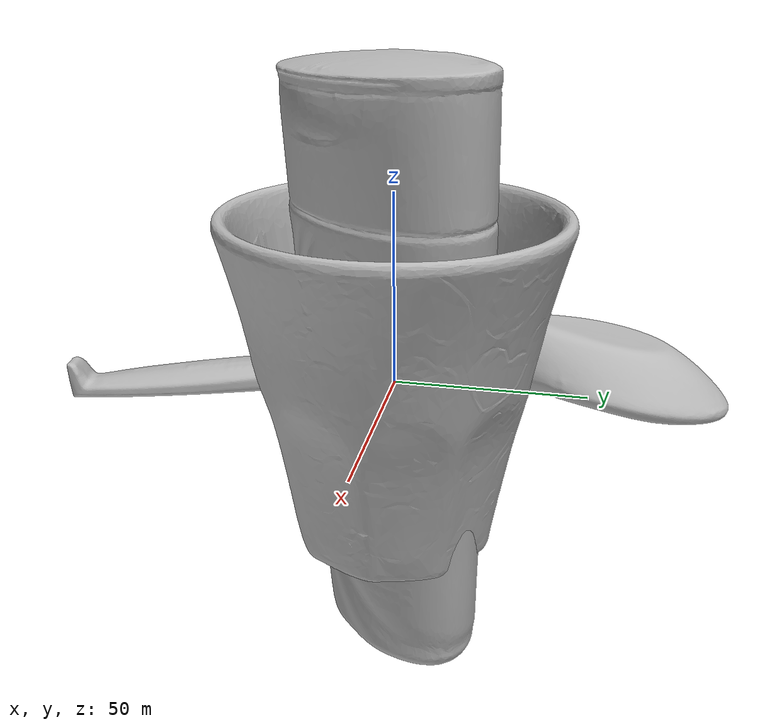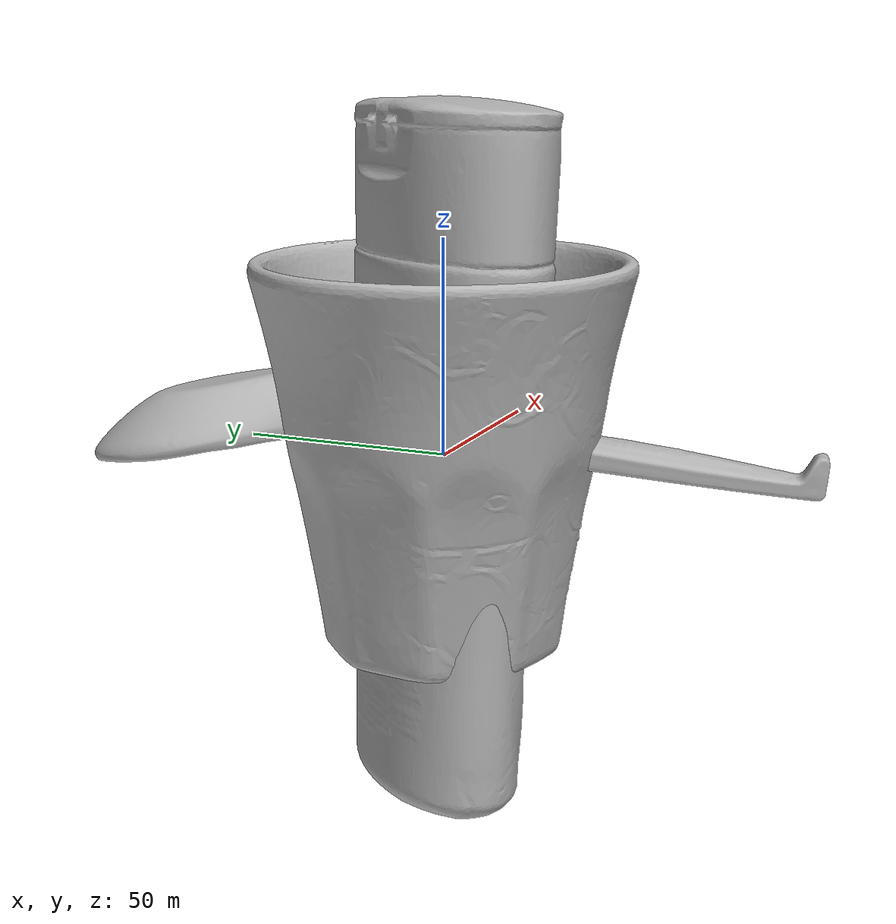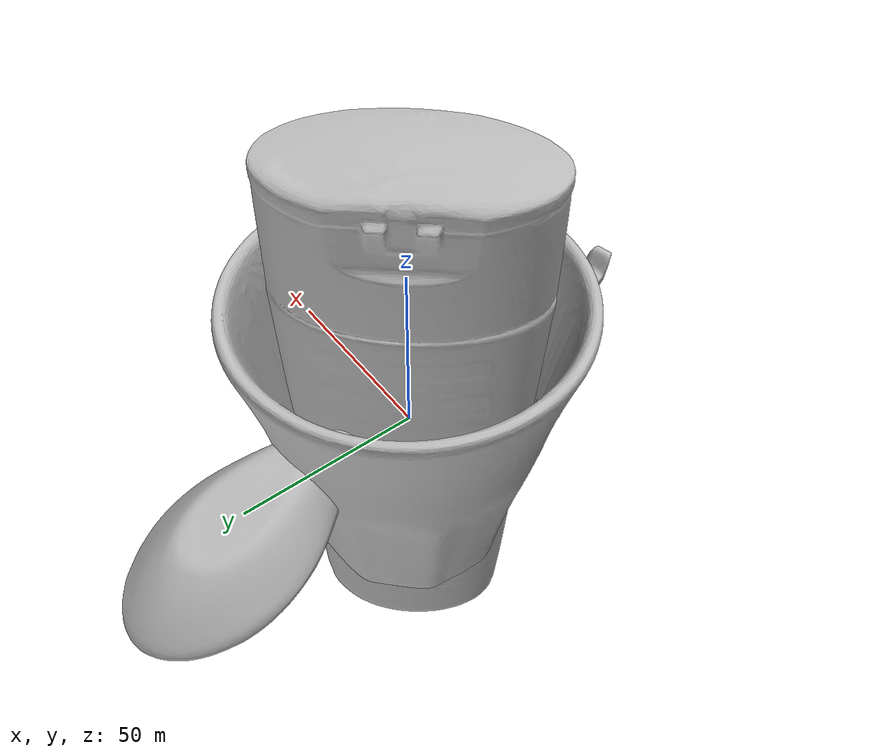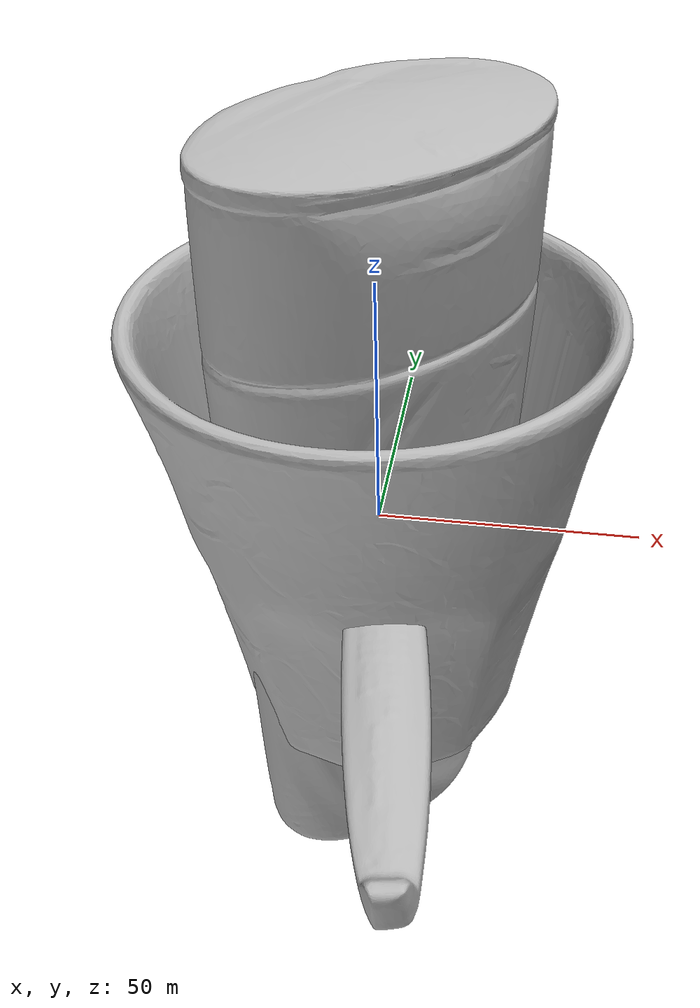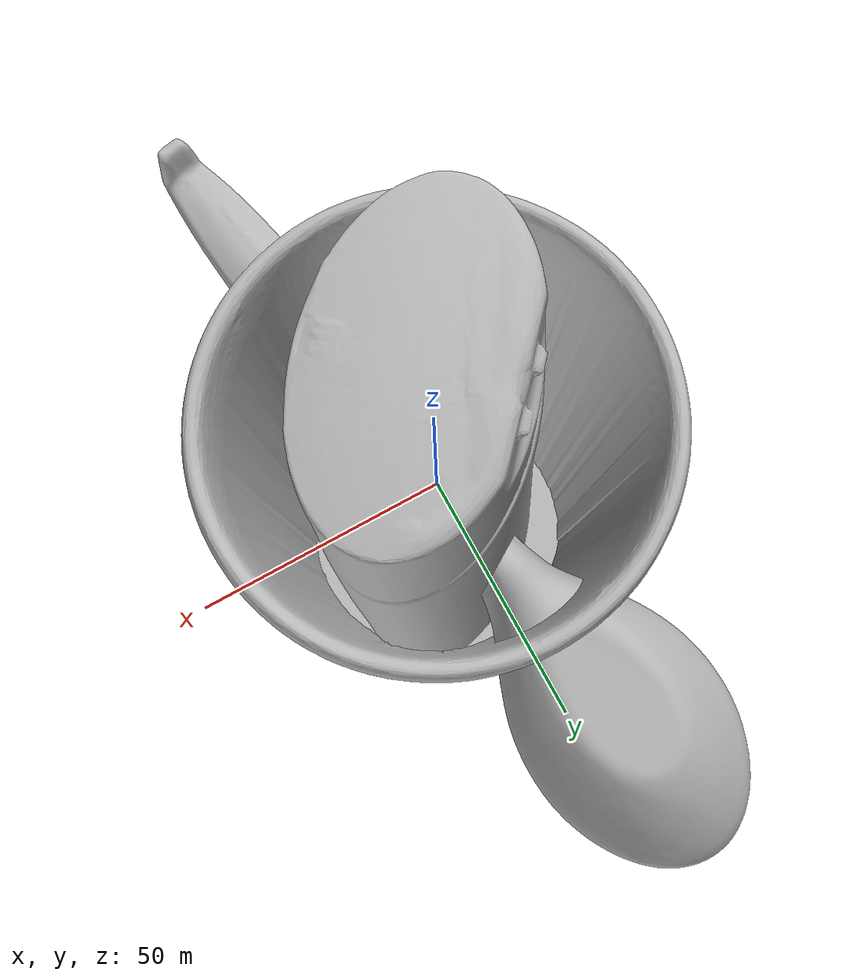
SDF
<sdf version="1.4">
 <world name="default">
  <light name="light1" type="point">
   <pose>0 0 1 0 0 0</pose>
   <diffuse>3 3 3 1</diffuse>
   <specular>3 3 3 1</specular>
  </light>
  <light name="light2" type="point">
   <pose>0 0.5 2 0 0 0</pose>
   <diffuse>1 1 1 1</diffuse>
   <specular>1 1 1 1</specular>
  </light>
  <light name="light3" type="point">
   <pose>0 0.5 2 0 0 0</pose>
   <diffuse>3 3 3 1</diffuse>
   <specular>3 3 3 1</specular>
  </light>
  <scene><ambient>0.7 0.7 0.7</ambient></scene>
  <model name="bottle1">
   <link name="link_bottle1">
    <collision name="default">
     <geometry>
      <mesh><uri>model://conditioner/collision_meshes/collision.obj</uri><scale>1.0 1.0 1.0</scale></mesh>
     </geometry>
     <surface>
      <friction><ode><mu>0.5</mu><mu2>0.5</mu2></ode></friction>
      <contact><ode><max_vel>0</max_vel><min_depth>0.0001</min_depth><kp>1e8</kp></ode></contact>
     </surface>
    </collision>
    <visual name="default">
     <geometry>
      <mesh><uri>model://conditioner/visual_meshes/visual.dae</uri><scale>1.0 1.0 1.0</scale></mesh>
     </geometry>
    </visual>
    <inertial>
     <mass>0.31316134333610535</mass>
     <pose>-0.00055994390277192 -0.0001729748910292983 0.004359682556241751 -0.005038373535624127 0.01530604069317056 0.015072338587352078</pose>
     <inertia>
      <ixx>0.0006812382</ixx>
      <iyy>0.000729753</iyy>
      <izz>0.000105037434</izz>
      <ixy>0</ixy>
      <ixz>0</ixz>
      <iyz>0</iyz>
     </inertia>
    </inertial>
   </link>
   <pose>0.09018134325742722 0.11584477126598358 0.08123074471950531 0.03648973736564215 -0.015502285291077235 0.8220357850784407</pose>
  </model>
  <model name="bottle2">
   <link name="link_bottle2">
    <collision name="default">
     <geometry>
      <mesh><uri>model://pigeon/collision_meshes/collision.obj</uri><scale>1.0 1.0 1.0</scale></mesh>
     </geometry>
     <surface>
      <friction><ode><mu>0.5</mu><mu2>0.5</mu2></ode></friction>
      <contact><ode><max_vel>0</max_vel><min_depth>0.0001</min_depth><kp>1e8</kp></ode></contact>
     </surface>
    </collision>
    <visual name="default">
     <geometry><mesh><uri>model://pigeon/visual_meshes/visual.dae</uri><scale>1.0 1.0 1.0</scale></mesh></geometry>
    </visual>
    <inertial>
     <mass>0.6510184407234192</mass>
     <pose>-9.675473847892135e-05 -0.00019276776583865285 -0.01593620888888836 -0.011704407543161608 -0.0012978192378484078 -0.04198827283679603</pose>
     <inertia>
      <ixx>0.0016273881</ixx>
      <iyy>0.0017372583</iyy>
      <izz>0.00033475916</izz>
      <ixy>0</ixy>
      <ixz>0</ixz>
      <iyz>0</iyz>
     </inertia>
    </inertial>
   </link>
   <pose>-0.0010317404521629214 -0.09542618691921234 0.09864481538534164 2.336413719014486e-05 3.5151762314864486e-06 -2.8512464794147023</pose>
  </model>
  <model name="silverware1">
   <link name="link_silverware1">
    <collision name="default">
     <geometry>
      <mesh><uri>model://doraemon_spoon/collision_meshes/collision.obj</uri><scale>1.0 1.0 1.0</scale></mesh>
     </geometry>
     <surface>
      <friction><ode><mu>0.5</mu><mu2>0.5</mu2></ode></friction>
      <contact><ode><max_vel>0</max_vel><min_depth>0.0001</min_depth><kp>1e8</kp></ode></contact>
     </surface>
    </collision>
    <visual name="default">
     <geometry>
      <mesh><uri>model://doraemon_spoon/visual_meshes/visual.dae</uri><scale>1.0 1.0 1.0</scale></mesh>
     </geometry>
    </visual>
    <inertial>
     <mass>0.020366016775369644</mass>
     <pose>-0.022165074944496155 -0.0006374584045261145 -0.0033325462136417627 -0.009147200915366215 0.0738041822243956 -0.014123826891092987</pose>
     <inertia>
      <ixx>1.5952605e-06</ixx>
      <iyy>4.5307766e-05</iyy>
      <izz>4.6078047e-05</izz>
      <ixy>0</ixy>
      <ixz>0</ixz>
      <iyz>0</iyz>
     </inertia>
    </inertial>
   </link>
   <pose>-0.12279114127159119 -0.03160594031214714 0.004940757527947426 -3.1366376775513314 0.11917376402409481 -1.4293073653749122</pose>
  </model>
  <model name="stationery1">
   <link name="link_stationery1">
    <collision name="default">
     <geometry>
      <mesh><uri>model://correction_fuid/collision_meshes/collision.obj</uri><scale>1.0 1.0 1.0</scale></mesh>
     </geometry>
     <surface>
      <friction><ode><mu>0.5</mu><mu2>0.5</mu2></ode></friction>
      <contact><ode><max_vel>0</max_vel><min_depth>0.0001</min_depth><kp>1e8</kp></ode></contact>
     </surface>
    </collision>
    <visual name="default">
     <geometry>
      <mesh><uri>model://correction_fuid/visual_meshes/visual.dae</uri><scale>1.0 1.0 1.0</scale></mesh>
     </geometry>
    </visual>
    <inertial>
     <mass>0.02487199380993843</mass>
     <pose>-0.00012557733862195164 -0.0009722901741042733 -0.001618212671019137 -0.010846607936808557 0.019488255039962172 -0.015992454917835536</pose>
     <inertia>
      <ixx>2.4088951e-05</ixx>
      <iyy>1.4578937e-06</iyy>
      <izz>2.4715917e-05</izz>
      <ixy>0</ixy>
      <ixz>0</ixz>
      <iyz>0</iyz>
     </inertia>
    </inertial>
   </link>
   <pose>-0.05428783968091011 -0.3260456621646881 0.009632832370698452 -0.0017271170953675845 -0.05616872114468878 0.8518308687821872</pose>
  </model>
  <model name="bowl1">
   <link name="link_bowl1">
    <collision name="default">
     <geometry>
      <mesh><uri>model://doraemon_bowl/collision_meshes/collision.obj</uri><scale>1.0 1.0 1.0</scale></mesh>
     </geometry>
     <surface>
      <friction><ode><mu>0.5</mu><mu2>0.5</mu2></ode></friction>
      <contact><ode><max_vel>0</max_vel><min_depth>0.0001</min_depth><kp>1e8</kp></ode></contact>
     </surface>
    </collision>
    <visual name="default">
     <geometry>
      <mesh><uri>model://doraemon_bowl/visual_meshes/visual.dae</uri><scale>1.0 1.0 1.0</scale></mesh>
     </geometry>
    </visual>
    <inertial>
     <mass>0.06713785231113434</mass>
     <pose>-0.014629548415541649 0.000485710974317044 -0.0020864871330559254 -0.005093962398800634 -0.10568405274446478 -0.026426476578293747</pose>
     <inertia>
      <ixx>9.309732e-05</ixx>
      <iyy>0.00012251528</iyy>
      <izz>0.00018024874</izz>
      <ixy>0</ixy>
      <ixz>0</ixz>
      <iyz>0</iyz>
     </inertia>
    </inertial>
   </link>
   <pose>0.2184717208147049 -0.21935081481933594 0.025905488058924675 0.008593529322226361 0.006343557723547932 -2.9129550682201337</pose>
  </model>
  <model name="cup1">
   <link name="link_cup1">
    <collision name="default">
     <geometry>
      <mesh><uri>model://hello_kitty_cup/collision_meshes/collision.obj</uri><scale>1.0 1.0 1.0</scale></mesh>
     </geometry>
     <surface>
      <friction><ode><mu>0.5</mu><mu2>0.5</mu2></ode></friction>
      <contact><ode><max_vel>0</max_vel><min_depth>0.0001</min_depth><kp>1e8</kp></ode></contact>
     </surface>
    </collision>
    <visual name="default">
     <geometry>
      <mesh><uri>model://hello_kitty_cup/visual_meshes/visual.dae</uri><scale>1.0 1.0 1.0</scale></mesh>
     </geometry>
    </visual>
    <inertial>
     <mass>0.13384777307510376</mass>
     <pose>0.00027251095161773264 0.00027950218645855784 0.0030449770856648684 0.057791450277227645 0.007964955326408191 -0.02045228086216793</pose>
     <inertia>
      <ixx>0.0001843247</ixx>
      <iyy>0.0001863793</iyy>
      <izz>0.00015541737</izz>
      <ixy>0</ixy>
      <ixz>0</ixz>
      <iyz>0</iyz>
     </inertia>
    </inertial>
   </link>
   <pose>0.25191932916641235 -0.05119435861706734 0.046214040368795395 -0.005714295454244743 0.010790175566305984 2.284589538279624</pose>
  </model>
  <model name="plate1">
   <link name="link_plate1">
    <collision name="default">
     <geometry>
      <mesh><uri>model://hello_kitty_plate/collision_meshes/collision.obj</uri><scale>1.0 1.0 1.0</scale></mesh>
     </geometry>
     <surface>
      <friction><ode><mu>0.5</mu><mu2>0.5</mu2></ode></friction>
      <contact><ode><max_vel>0</max_vel><min_depth>0.0001</min_depth><kp>1e8</kp></ode></contact>
     </surface>
    </collision>
    <visual name="default">
     <geometry>
      <mesh><uri>model://hello_kitty_plate/visual_meshes/visual.dae</uri><scale>1.0 1.0 1.0</scale></mesh>
     </geometry>
    </visual>
    <inertial>
     <mass>0.0821625292301178</mass>
     <pose>0.0073142931796610355 0.00028937371098436415 -0.0027947186026722193 -0.0001043184795654353 -0.007054440405958318 -0.014449014916312054</pose>
     <inertia>
      <ixx>0.00015843393</ixx>
      <iyy>0.00029901267</iyy>
      <izz>0.00045402072</izz>
      <ixy>0</ixy>
      <ixz>0</ixz>
      <iyz>0</iyz>
     </inertia>
    </inertial>
   </link>
   <pose>0.041218940168619156 0.23444649577140808 0.008291326463222504 0.0004651098090389565 0.0041709403801769305 -1.1241718597926558</pose>
  </model>
  <physics type="ode">
   <max_contacts>50</max_contacts>
   <ode>
    <solver><type>quick</type><iters>75</iters></solver>
    <constraints>
     <contact_max_correcting_vel>0</contact_max_correcting_vel>
     <contact_surface_layer>0</contact_surface_layer>
    </constraints>
   </ode>
  </physics>
 </world>
</sdf>
